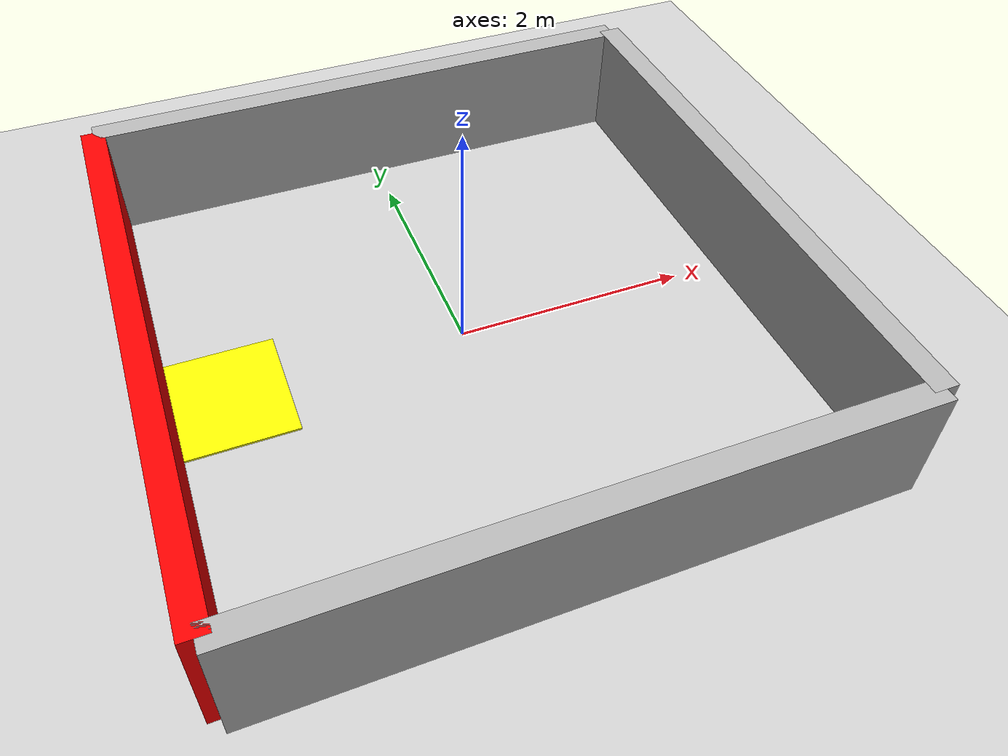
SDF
<?xml version="1.0"?>
<sdf version="1.6">
  <world name="ring_world">

    <plugin filename="gz-sim-physics-system"
            name="gz::sim::systems::Physics"/>
    <plugin filename="gz-sim-user-commands-system"
            name="gz::sim::systems::UserCommands"/>
    <plugin filename="gz-sim-scene-broadcaster-system"
            name="gz::sim::systems::SceneBroadcaster"/>
    <plugin filename="gz-sim-sensors-system"
            name="gz::sim::systems::Sensors"/>
    <plugin filename="gz-sim-imu-system"
            name="gz::sim::systems::Imu"/>
    <plugin
      filename="gz-sim-user-commands-system"
      name="gz::sim::systems::UserCommands">
    </plugin>

    <physics name="default_physics" type="ode">
      <real_time_update_rate>1000.0</real_time_update_rate>
      <max_step_size>0.001</max_step_size>
      <real_time_factor>1.0</real_time_factor>
    </physics>

    <light name="sun" type="directional">
      <cast_shadows>true</cast_shadows>
      <pose>0 0 10 0 0 0</pose>
      <diffuse>0.8 0.8 0.8 1</diffuse>
      <specular>0.2 0.2 0.2 1</specular>
      <attenuation>
        <range>1000</range>
        <constant>0.9</constant>
        <linear>0.01</linear>
        <quadratic>0.001</quadratic>
      </attenuation>
      <direction>-0.5 0.1 -0.9</direction>
    </light>

    <model name="ground_plane">
      <static>true</static>
      <link name="link">
        <collision name="collision">
          <geometry>
            <plane>
              <normal>0 0 1</normal>
              <size>100 100</size>
            </plane>
          </geometry>
        </collision>
        <visual name="visual">
          <geometry>
            <plane>
              <normal>0 0 1</normal>
              <size>100 100</size>
            </plane>
          </geometry>
          <material>
            <ambient>0.8 0.8 0.8 1</ambient>
            <diffuse>0.8 0.8 0.8 1</diffuse>
            <specular>0.8 0.8 0.8 1</specular>
          </material>
        </visual>
      </link>
    </model>

    <model name="wall_front">
      <static>true</static>
      <pose>2.5 0 0.5 0 0 0</pose>
      <link name="link">
        <collision name="collision">
          <geometry><box><size>0.2 5 1</size></box></geometry>
        </collision>
        <visual name="visual">
          <geometry><box><size>0.2 5 1</size></box></geometry>
          <material>
            <ambient>0.7 0.7 0.7 1</ambient>
            <diffuse>0.7 0.7 0.7 1</diffuse>
          </material>
        </visual>
      </link>
    </model>

    <model name="wall_back_red">
      <static>true</static>
      <pose>-2.5 0 0.5 0 0 0</pose>
      <link name="link">
        <collision name="collision">
          <geometry><box><size>0.2 5 1</size></box></geometry>
        </collision>
        <visual name="visual">
          <geometry><box><size>0.2 5 1</size></box></geometry>
          <material>
            <ambient>1 0 0 1</ambient>
            <diffuse>1 0 0 1</diffuse>
            <specular>0.5 0 0 1</specular>
          </material>
        </visual>
      </link>
    </model>

    <model name="wall_left">
      <static>true</static>
      <pose>0 2.5 0.5 0 0 1.5708</pose>
      <link name="link">
        <collision name="collision">
          <geometry><box><size>0.2 5 1</size></box></geometry>
        </collision>
        <visual name="visual">
          <geometry><box><size>0.2 5 1</size></box></geometry>
          <material>
            <ambient>0.7 0.7 0.7 1</ambient>
            <diffuse>0.7 0.7 0.7 1</diffuse>
          </material>
        </visual>
      </link>
    </model>

    <model name="wall_right">
      <static>true</static>
      <pose>0 -2.5 0.5 0 0 1.5708</pose>
      <link name="link">
        <collision name="collision">
          <geometry><box><size>0.2 5 1</size></box></geometry>
        </collision>
        <visual name="visual">
          <geometry><box><size>0.2 5 1</size></box></geometry>
          <material>
            <ambient>0.7 0.7 0.7 1</ambient>
            <diffuse>0.7 0.7 0.7 1</diffuse>
          </material>
        </visual>
      </link>
    </model>
    <model name="plate">
      <pose>-2 0 0 0 0 0</pose>
      <link name="link1">
        <inertial>
          <mass>10.0</mass>
          <inertia>
            <ixx>1.0</ixx>
            <iyy>1.0</iyy>
            <izz>1.0</izz>
            <ixy>0.0</ixy>
            <ixz>0.0</ixz>
            <iyz>0.0</iyz>
          </inertia>
        </inertial>
        <collision name="collision">
          <geometry><box><size>1 1 0.02</size></box></geometry>
        </collision>
        <visual name="visual">
          <geometry><box><size>1 1 0.02</size></box></geometry>
          <material>
            <ambient>1 1 0 1</ambient>
            <diffuse>1 1 0 1</diffuse>
          </material>
        </visual>
      </link>
      <link name="link2">
        <inertial>
          <mass>10.0</mass>
          <inertia>
            <ixx>1.0</ixx>
            <iyy>1.0</iyy>
            <izz>1.0</izz>
            <ixy>0.0</ixy>
            <ixz>0.0</ixz>
            <iyz>0.0</iyz>
          </inertia>
        </inertial>
        <collision name="collision">
          <geometry><box><size>1 1 0.02</size></box></geometry>
        </collision>
        <visual name="visual">
          <geometry><box><size>1 1 0.02</size></box></geometry>
          <material>
            <ambient>1 1 0 1</ambient>
            <diffuse>1 1 0 1</diffuse>
          </material>
        </visual>
      </link>
      <joint name="plate_joint" type="prismatic">
        <pose>0 0 0.5 0 0 0</pose>
        <parent>link1</parent>
        <child>link2</child>
        <axis>
          <xyz>0 0 1</xyz>
          <limit>
            <lower>-1</lower>
            <upper>1</upper>
            <effort>1e6</effort>
          </limit>
        </axis>
      </joint>
      <plugin filename="gz-sim-joint-controller-system" name="gz::sim::systems::JointController">
        <joint_name>plate_joint</joint_name>
        <initial_velocity>1.0</initial_velocity>
      </plugin>
    </model>
  </world>
</sdf>
